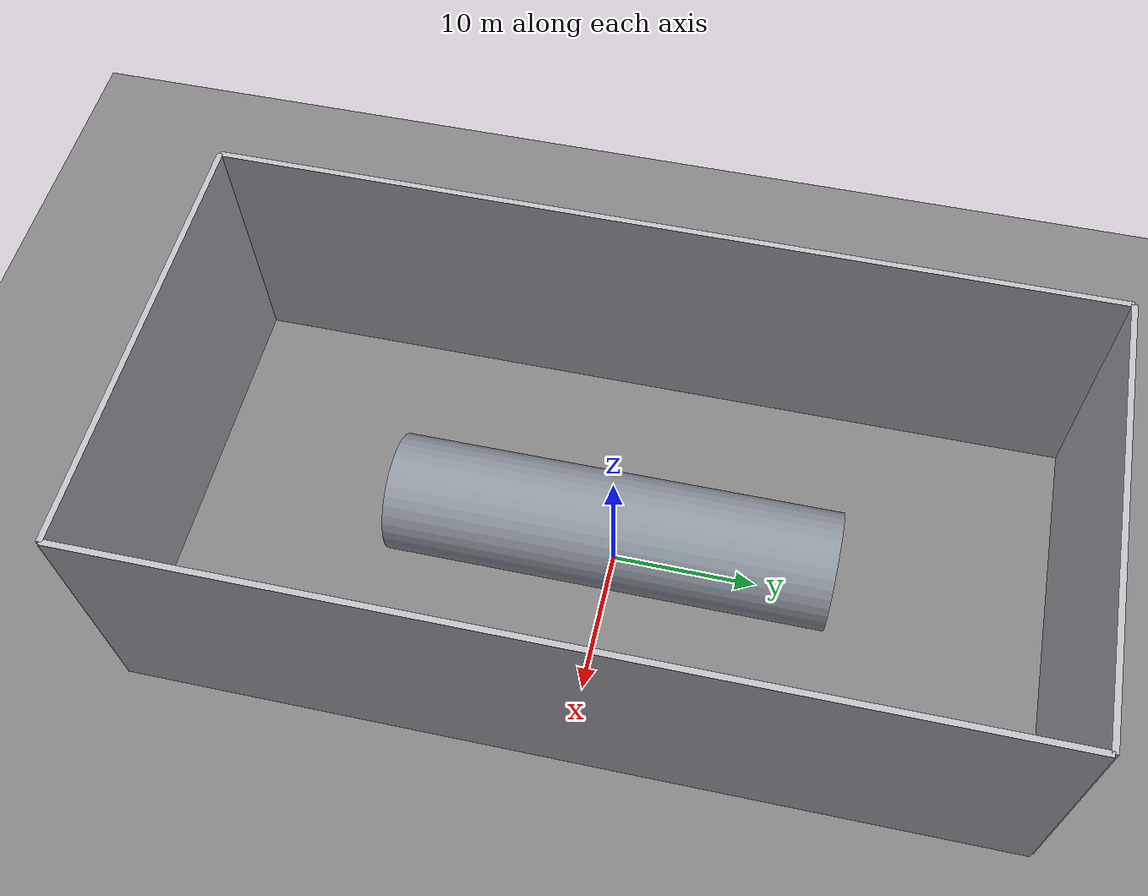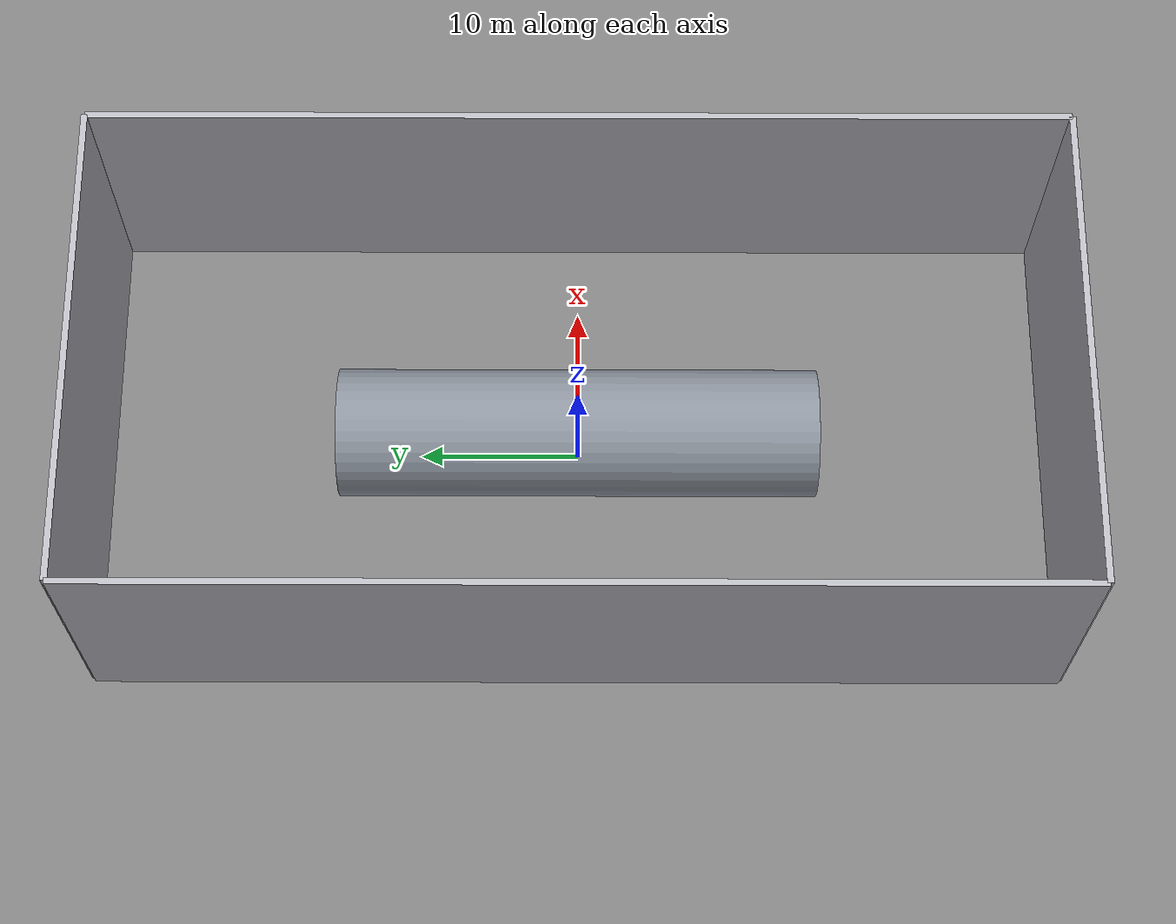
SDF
<?xml version="1.0" ?>
<sdf version="1.7">
  <world name="wind_tower_world">

    <physics type="ode">
      <max_step_size>0.003</max_step_size>
      <real_time_factor>1.0</real_time_factor>
      <real_time_update_rate>333</real_time_update_rate>
    </physics>

    <plugin name='gz::sim::systems::Physics'        filename='libgz-sim-physics-system.so'/>
    <plugin name='gz::sim::systems::UserCommands'   filename='libgz-sim-user-commands-system.so'/>
    <plugin name='gz::sim::systems::SceneBroadcaster' filename='libgz-sim-scene-broadcaster-system.so'/>
    <plugin name='gz::sim::systems::Contact'        filename='libgz-sim-contact-system.so'/>
    <plugin name="gz::sim::systems::Sensors"        filename="libgz-sim-sensors-system.so">
      <render_engine>ogre2</render_engine>
    </plugin>
    <plugin name="gz::sim::systems::Imu"    filename="libgz-sim-imu-system.so"/>
    <plugin name="gz::sim::systems::NavSat" filename="libgz-sim-navsat-system.so"/>

    <scene>
      <ambient>0.8 0.8 0.8 1</ambient>
      <background>0.3 0.3 0.35 1</background>
      <shadows>true</shadows>
    </scene>

    <light type="directional" name="sun">
      <cast_shadows>true</cast_shadows>
      <pose>0 0 20 0 0 0</pose>
      <diffuse>0.9 0.9 0.9 1</diffuse>
      <specular>0.3 0.3 0.3 1</specular>
      <direction>-0.5 0.1 -0.9</direction>
    </light>

    <!-- Suelo -->
    <model name="ground_plane">
      <static>true</static>
      <link name="link">
        <collision name="collision">
          <geometry>
            <plane><normal>0 0 1</normal><size>200 200</size></plane>
          </geometry>
          <surface><friction><ode><mu>0.8</mu><mu2>0.8</mu2></ode></friction></surface>
        </collision>
        <visual name="visual">
          <geometry>
            <plane><normal>0 0 1</normal><size>200 200</size></plane>
          </geometry>
          <material>
            <ambient>0.35 0.35 0.35 1</ambient>
            <diffuse>0.5 0.5 0.5 1</diffuse>
          </material>
        </visual>
      </link>
    </model>

    <!-- Pared norte -->
    <model name="wall_north">
      <static>true</static>
      <pose>0 30 9 0 0 0</pose>
      <link name="link">
        <collision name="col"><geometry><box><size>30 0.4 18</size></box></geometry></collision>
        <visual name="vis">
          <geometry><box><size>30 0.4 18</size></box></geometry>
          <material><ambient>0.72 0.72 0.75 1</ambient><diffuse>0.72 0.72 0.75 1</diffuse></material>
        </visual>
      </link>
    </model>

    <!-- Pared sur -->
    <model name="wall_south">
      <static>true</static>
      <pose>0 -30 9 0 0 0</pose>
      <link name="link">
        <collision name="col"><geometry><box><size>30 0.4 18</size></box></geometry></collision>
        <visual name="vis">
          <geometry><box><size>30 0.4 18</size></box></geometry>
          <material><ambient>0.72 0.72 0.75 1</ambient><diffuse>0.72 0.72 0.75 1</diffuse></material>
        </visual>
      </link>
    </model>

    <!-- Pared este -->
    <model name="wall_east">
      <static>true</static>
      <pose>15 0 9 0 0 0</pose>
      <link name="link">
        <collision name="col"><geometry><box><size>0.4 60 18</size></box></geometry></collision>
        <visual name="vis">
          <geometry><box><size>0.4 60 18</size></box></geometry>
          <material><ambient>0.72 0.72 0.75 1</ambient><diffuse>0.72 0.72 0.75 1</diffuse></material>
        </visual>
      </link>
    </model>

    <!-- Pared oeste -->
    <model name="wall_west">
      <static>true</static>
      <pose>-15 0 9 0 0 0</pose>
      <link name="link">
        <collision name="col"><geometry><box><size>0.4 60 18</size></box></geometry></collision>
        <visual name="vis">
          <geometry><box><size>0.4 60 18</size></box></geometry>
          <material><ambient>0.72 0.72 0.75 1</ambient><diffuse>0.72 0.72 0.75 1</diffuse></material>
        </visual>
      </link>
    </model>

    <model name="wind_tower_tube">
      <static>false</static>
      <pose>-4 15 0 1.5708 0 0</pose>
      <link name="tube_link">
        <!-- Inercia de cilindro hueco Ø8m×30m, masa simulada -->
        <inertial>
          <mass>2000</mass>
          <inertia>
            <ixx>155000</ixx><ixy>0</ixy><ixz>0</ixz>
            <iyy>155000</iyy><iyz>0</iyz>
            <izz>32000</izz>
          </inertia>
        </inertial>
        <visual name="visual">
          <geometry>
            <mesh>
              <uri>model://TRAMO_TORRE.STL</uri>
              <scale>0.001 0.001 0.001</scale>
            </mesh>
          </geometry>
          <material>
            <ambient>0.55 0.58 0.62 1</ambient>
            <diffuse>0.55 0.58 0.62 1</diffuse>
            <specular>0.3 0.3 0.3 1</specular>
          </material>
        </visual>
        <collision name="collision">
          <geometry>
            <mesh>
              <uri>model://TRAMO_TORRE.STL</uri>
              <scale>0.001 0.001 0.001</scale>
            </mesh>
          </geometry>
        </collision>
      </link>

      <!-- Joint revolute: fija traslación, permite rotación alrededor del eje axial del tubo -->
      <!-- pose en frame tube_link: centro sección X 0→8m = 4, Y 0→8m = 4 -->
      <joint name="turner_joint" type="revolute">
        <parent>world</parent>
        <child>tube_link</child>
        <pose>4.0 4.0 0 0 0 0</pose>
        <axis>
          <xyz expressed_in="__model__">0 0 1</xyz>
          <limit><lower>-1e16</lower><upper>1e16</upper></limit>
          <!-- Low losses keep the simulated turner responsive to velocity commands.
               Real actuator limits should be modelled separately once hardware data exists. -->
          <dynamics><damping>2.0</damping><friction>0.1</friction></dynamics>
        </axis>
      </joint>

      <!-- Controlador de velocidad del virador -->
      <plugin filename="gz-sim-joint-controller-system"
              name="gz::sim::systems::JointController">
        <joint_name>turner_joint</joint_name>
        <use_force_commands>false</use_force_commands>
        <initial_velocity>0.0</initial_velocity>
      </plugin>

      <!-- Publicador de estado del joint (ángulo) -->
      <plugin filename="gz-sim-joint-state-publisher-system"
              name="gz::sim::systems::JointStatePublisher"/>

    </model>

    <!-- SYNTHETIC DEFECTS (auto-generated) -->
    <model name="defect_0000_pitting">
      <static>true</static>
      <pose>3.849072 -5.849238 3.345928 0 0 0</pose>
      <link name="link">
        <visual name="visual">
          <geometry>
            <sphere>
              <radius>0.02075</radius>
            </sphere>
          </geometry>
          <material>
            <ambient>0.15 0.15 0.15 1</ambient>
            <diffuse>0.15 0.15 0.15 1</diffuse>
            <specular>0.1 0.1 0.1 1</specular>
          </material>
          <cast_shadows>false</cast_shadows>
        </visual>
        <collision name="collision">
          <geometry>
            <sphere><radius>0.02075</radius></sphere>
          </geometry>
          <surface>
            <contact>
              <collide_bitmask>0</collide_bitmask>
            </contact>
          </surface>
        </collision>
      </link>
    </model>
    <model name="defect_0001_pitting">
      <static>true</static>
      <pose>2.018058 10.196669 0.680613 0 0 0</pose>
      <link name="link">
        <visual name="visual">
          <geometry>
            <sphere>
              <radius>0.04030</radius>
            </sphere>
          </geometry>
          <material>
            <ambient>0.15 0.15 0.15 1</ambient>
            <diffuse>0.15 0.15 0.15 1</diffuse>
            <specular>0.1 0.1 0.1 1</specular>
          </material>
          <cast_shadows>false</cast_shadows>
        </visual>
        <collision name="collision">
          <geometry>
            <sphere><radius>0.04030</radius></sphere>
          </geometry>
          <surface>
            <contact>
              <collide_bitmask>0</collide_bitmask>
            </contact>
          </surface>
        </collision>
      </link>
    </model>
    <model name="defect_0002_rust">
      <static>true</static>
      <pose>-0.130619 -7.315413 7.880418 0 0 0</pose>
      <link name="link">
        <visual name="visual">
          <geometry>
            <sphere>
              <radius>0.04238</radius>
            </sphere>
          </geometry>
          <material>
            <ambient>0.55 0.18 0.05 1</ambient>
            <diffuse>0.55 0.18 0.05 1</diffuse>
            <specular>0.1 0.1 0.1 1</specular>
          </material>
          <cast_shadows>false</cast_shadows>
        </visual>
        <collision name="collision">
          <geometry>
            <sphere><radius>0.04238</radius></sphere>
          </geometry>
          <surface>
            <contact>
              <collide_bitmask>0</collide_bitmask>
            </contact>
          </surface>
        </collision>
      </link>
    </model>
    <model name="defect_0003_rust">
      <static>true</static>
      <pose>-1.078076 3.896995 7.715862 0 0 0</pose>
      <link name="link">
        <visual name="visual">
          <geometry>
            <sphere>
              <radius>0.05591</radius>
            </sphere>
          </geometry>
          <material>
            <ambient>0.55 0.18 0.05 1</ambient>
            <diffuse>0.55 0.18 0.05 1</diffuse>
            <specular>0.1 0.1 0.1 1</specular>
          </material>
          <cast_shadows>false</cast_shadows>
        </visual>
        <collision name="collision">
          <geometry>
            <sphere><radius>0.05591</radius></sphere>
          </geometry>
          <surface>
            <contact>
              <collide_bitmask>0</collide_bitmask>
            </contact>
          </surface>
        </collision>
      </link>
    </model>
    <model name="defect_0004_rust">
      <static>true</static>
      <pose>0.156667 8.045192 0.165340 0 0 0</pose>
      <link name="link">
        <visual name="visual">
          <geometry>
            <sphere>
              <radius>0.08714</radius>
            </sphere>
          </geometry>
          <material>
            <ambient>0.55 0.18 0.05 1</ambient>
            <diffuse>0.55 0.18 0.05 1</diffuse>
            <specular>0.1 0.1 0.1 1</specular>
          </material>
          <cast_shadows>false</cast_shadows>
        </visual>
        <collision name="collision">
          <geometry>
            <sphere><radius>0.08714</radius></sphere>
          </geometry>
          <surface>
            <contact>
              <collide_bitmask>0</collide_bitmask>
            </contact>
          </surface>
        </collision>
      </link>
    </model>
    <model name="defect_0005_through_hole">
      <static>true</static>
      <pose>3.190843 -4.153487 1.845530 0 0 0</pose>
      <link name="link">
        <visual name="visual">
          <geometry>
            <sphere>
              <radius>0.07491</radius>
            </sphere>
          </geometry>
          <material>
            <ambient>0.00 0.00 0.00 1</ambient>
            <diffuse>0.00 0.00 0.00 1</diffuse>
            <specular>0.1 0.1 0.1 1</specular>
          </material>
          <cast_shadows>false</cast_shadows>
        </visual>
        <collision name="collision">
          <geometry>
            <sphere><radius>0.07491</radius></sphere>
          </geometry>
          <surface>
            <contact>
              <collide_bitmask>0</collide_bitmask>
            </contact>
          </surface>
        </collision>
      </link>
    </model>
    <model name="defect_0006_through_hole">
      <static>true</static>
      <pose>2.208609 -10.588608 0.824345 0 0 0</pose>
      <link name="link">
        <visual name="visual">
          <geometry>
            <sphere>
              <radius>0.05683</radius>
            </sphere>
          </geometry>
          <material>
            <ambient>0.00 0.00 0.00 1</ambient>
            <diffuse>0.00 0.00 0.00 1</diffuse>
            <specular>0.1 0.1 0.1 1</specular>
          </material>
          <cast_shadows>false</cast_shadows>
        </visual>
        <collision name="collision">
          <geometry>
            <sphere><radius>0.05683</radius></sphere>
          </geometry>
          <surface>
            <contact>
              <collide_bitmask>0</collide_bitmask>
            </contact>
          </surface>
        </collision>
      </link>
    </model>
    <model name="defect_0007_through_hole">
      <static>true</static>
      <pose>-3.823598 7.985335 4.489581 0 0 0</pose>
      <link name="link">
        <visual name="visual">
          <geometry>
            <sphere>
              <radius>0.07019</radius>
            </sphere>
          </geometry>
          <material>
            <ambient>0.00 0.00 0.00 1</ambient>
            <diffuse>0.00 0.00 0.00 1</diffuse>
            <specular>0.1 0.1 0.1 1</specular>
          </material>
          <cast_shadows>false</cast_shadows>
        </visual>
        <collision name="collision">
          <geometry>
            <sphere><radius>0.07019</radius></sphere>
          </geometry>
          <surface>
            <contact>
              <collide_bitmask>0</collide_bitmask>
            </contact>
          </surface>
        </collision>
      </link>
    </model>
    <model name="defect_0008_pitting">
      <static>true</static>
      <pose>-1.244852 -3.158106 7.670452 0 0 0</pose>
      <link name="link">
        <visual name="visual">
          <geometry>
            <sphere>
              <radius>0.04919</radius>
            </sphere>
          </geometry>
          <material>
            <ambient>0.15 0.15 0.15 1</ambient>
            <diffuse>0.15 0.15 0.15 1</diffuse>
            <specular>0.1 0.1 0.1 1</specular>
          </material>
          <cast_shadows>false</cast_shadows>
        </visual>
        <collision name="collision">
          <geometry>
            <sphere><radius>0.04919</radius></sphere>
          </geometry>
          <surface>
            <contact>
              <collide_bitmask>0</collide_bitmask>
            </contact>
          </surface>
        </collision>
      </link>
    </model>
    <model name="defect_0009_through_hole">
      <static>true</static>
      <pose>-1.800271 9.404379 7.407772 0 0 0</pose>
      <link name="link">
        <visual name="visual">
          <geometry>
            <sphere>
              <radius>0.07093</radius>
            </sphere>
          </geometry>
          <material>
            <ambient>0.00 0.00 0.00 1</ambient>
            <diffuse>0.00 0.00 0.00 1</diffuse>
            <specular>0.1 0.1 0.1 1</specular>
          </material>
          <cast_shadows>false</cast_shadows>
        </visual>
        <collision name="collision">
          <geometry>
            <sphere><radius>0.07093</radius></sphere>
          </geometry>
          <surface>
            <contact>
              <collide_bitmask>0</collide_bitmask>
            </contact>
          </surface>
        </collision>
      </link>
    </model>
    <model name="defect_0010_pitting">
      <static>true</static>
      <pose>3.784691 -7.074645 4.956245 0 0 0</pose>
      <link name="link">
        <visual name="visual">
          <geometry>
            <sphere>
              <radius>0.02137</radius>
            </sphere>
          </geometry>
          <material>
            <ambient>0.15 0.15 0.15 1</ambient>
            <diffuse>0.15 0.15 0.15 1</diffuse>
            <specular>0.1 0.1 0.1 1</specular>
          </material>
          <cast_shadows>false</cast_shadows>
        </visual>
        <collision name="collision">
          <geometry>
            <sphere><radius>0.02137</radius></sphere>
          </geometry>
          <surface>
            <contact>
              <collide_bitmask>0</collide_bitmask>
            </contact>
          </surface>
        </collision>
      </link>
    </model>
    <model name="defect_0011_rust">
      <static>true</static>
      <pose>3.806809 -10.373963 4.676074 0 0 0</pose>
      <link name="link">
        <visual name="visual">
          <geometry>
            <sphere>
              <radius>0.05862</radius>
            </sphere>
          </geometry>
          <material>
            <ambient>0.55 0.18 0.05 1</ambient>
            <diffuse>0.55 0.18 0.05 1</diffuse>
            <specular>0.1 0.1 0.1 1</specular>
          </material>
          <cast_shadows>false</cast_shadows>
        </visual>
        <collision name="collision">
          <geometry>
            <sphere><radius>0.05862</radius></sphere>
          </geometry>
          <surface>
            <contact>
              <collide_bitmask>0</collide_bitmask>
            </contact>
          </surface>
        </collision>
      </link>
    </model>
    <model name="defect_0012_pitting">
      <static>true</static>
      <pose>3.768698 -3.375295 3.019910 0 0 0</pose>
      <link name="link">
        <visual name="visual">
          <geometry>
            <sphere>
              <radius>0.03094</radius>
            </sphere>
          </geometry>
          <material>
            <ambient>0.15 0.15 0.15 1</ambient>
            <diffuse>0.15 0.15 0.15 1</diffuse>
            <specular>0.1 0.1 0.1 1</specular>
          </material>
          <cast_shadows>false</cast_shadows>
        </visual>
        <collision name="collision">
          <geometry>
            <sphere><radius>0.03094</radius></sphere>
          </geometry>
          <surface>
            <contact>
              <collide_bitmask>0</collide_bitmask>
            </contact>
          </surface>
        </collision>
      </link>
    </model>
    <model name="defect_0013_rust">
      <static>true</static>
      <pose>-2.412563 3.848920 6.948924 0 0 0</pose>
      <link name="link">
        <visual name="visual">
          <geometry>
            <sphere>
              <radius>0.11493</radius>
            </sphere>
          </geometry>
          <material>
            <ambient>0.55 0.18 0.05 1</ambient>
            <diffuse>0.55 0.18 0.05 1</diffuse>
            <specular>0.1 0.1 0.1 1</specular>
          </material>
          <cast_shadows>false</cast_shadows>
        </visual>
        <collision name="collision">
          <geometry>
            <sphere><radius>0.11493</radius></sphere>
          </geometry>
          <surface>
            <contact>
              <collide_bitmask>0</collide_bitmask>
            </contact>
          </surface>
        </collision>
      </link>
    </model>
    <model name="defect_0014_rust">
      <static>true</static>
      <pose>2.629065 -8.751535 6.780543 0 0 0</pose>
      <link name="link">
        <visual name="visual">
          <geometry>
            <sphere>
              <radius>0.09833</radius>
            </sphere>
          </geometry>
          <material>
            <ambient>0.55 0.18 0.05 1</ambient>
            <diffuse>0.55 0.18 0.05 1</diffuse>
            <specular>0.1 0.1 0.1 1</specular>
          </material>
          <cast_shadows>false</cast_shadows>
        </visual>
        <collision name="collision">
          <geometry>
            <sphere><radius>0.09833</radius></sphere>
          </geometry>
          <surface>
            <contact>
              <collide_bitmask>0</collide_bitmask>
            </contact>
          </surface>
        </collision>
      </link>
    </model>
    <model name="defect_0015_through_hole">
      <static>true</static>
      <pose>-3.532389 1.480693 5.538777 0 0 0</pose>
      <link name="link">
        <visual name="visual">
          <geometry>
            <sphere>
              <radius>0.07200</radius>
            </sphere>
          </geometry>
          <material>
            <ambient>0.00 0.00 0.00 1</ambient>
            <diffuse>0.00 0.00 0.00 1</diffuse>
            <specular>0.1 0.1 0.1 1</specular>
          </material>
          <cast_shadows>false</cast_shadows>
        </visual>
        <collision name="collision">
          <geometry>
            <sphere><radius>0.07200</radius></sphere>
          </geometry>
          <surface>
            <contact>
              <collide_bitmask>0</collide_bitmask>
            </contact>
          </surface>
        </collision>
      </link>
    </model>
    <model name="defect_0016_through_hole">
      <static>true</static>
      <pose>0.770498 -7.044750 0.231766 0 0 0</pose>
      <link name="link">
        <visual name="visual">
          <geometry>
            <sphere>
              <radius>0.07880</radius>
            </sphere>
          </geometry>
          <material>
            <ambient>0.00 0.00 0.00 1</ambient>
            <diffuse>0.00 0.00 0.00 1</diffuse>
            <specular>0.1 0.1 0.1 1</specular>
          </material>
          <cast_shadows>false</cast_shadows>
        </visual>
        <collision name="collision">
          <geometry>
            <sphere><radius>0.07880</radius></sphere>
          </geometry>
          <surface>
            <contact>
              <collide_bitmask>0</collide_bitmask>
            </contact>
          </surface>
        </collision>
      </link>
    </model>
    <model name="defect_0017_rust">
      <static>true</static>
      <pose>-1.356370 -7.514446 0.382333 0 0 0</pose>
      <link name="link">
        <visual name="visual">
          <geometry>
            <sphere>
              <radius>0.06142</radius>
            </sphere>
          </geometry>
          <material>
            <ambient>0.55 0.18 0.05 1</ambient>
            <diffuse>0.55 0.18 0.05 1</diffuse>
            <specular>0.1 0.1 0.1 1</specular>
          </material>
          <cast_shadows>false</cast_shadows>
        </visual>
        <collision name="collision">
          <geometry>
            <sphere><radius>0.06142</radius></sphere>
          </geometry>
          <surface>
            <contact>
              <collide_bitmask>0</collide_bitmask>
            </contact>
          </surface>
        </collision>
      </link>
    </model>
    <model name="defect_0018_through_hole">
      <static>true</static>
      <pose>2.359343 4.041405 7.066712 0 0 0</pose>
      <link name="link">
        <visual name="visual">
          <geometry>
            <sphere>
              <radius>0.05573</radius>
            </sphere>
          </geometry>
          <material>
            <ambient>0.00 0.00 0.00 1</ambient>
            <diffuse>0.00 0.00 0.00 1</diffuse>
            <specular>0.1 0.1 0.1 1</specular>
          </material>
          <cast_shadows>false</cast_shadows>
        </visual>
        <collision name="collision">
          <geometry>
            <sphere><radius>0.05573</radius></sphere>
          </geometry>
          <surface>
            <contact>
              <collide_bitmask>0</collide_bitmask>
            </contact>
          </surface>
        </collision>
      </link>
    </model>
    <model name="defect_0019_through_hole">
      <static>true</static>
      <pose>3.861190 -6.113116 3.918169 0 0 0</pose>
      <link name="link">
        <visual name="visual">
          <geometry>
            <sphere>
              <radius>0.06294</radius>
            </sphere>
          </geometry>
          <material>
            <ambient>0.00 0.00 0.00 1</ambient>
            <diffuse>0.00 0.00 0.00 1</diffuse>
            <specular>0.1 0.1 0.1 1</specular>
          </material>
          <cast_shadows>false</cast_shadows>
        </visual>
        <collision name="collision">
          <geometry>
            <sphere><radius>0.06294</radius></sphere>
          </geometry>
          <surface>
            <contact>
              <collide_bitmask>0</collide_bitmask>
            </contact>
          </surface>
        </collision>
      </link>
    </model>
    <model name="defect_0020_pitting">
      <static>true</static>
      <pose>-2.333581 2.199236 0.878794 0 0 0</pose>
      <link name="link">
        <visual name="visual">
          <geometry>
            <sphere>
              <radius>0.02788</radius>
            </sphere>
          </geometry>
          <material>
            <ambient>0.15 0.15 0.15 1</ambient>
            <diffuse>0.15 0.15 0.15 1</diffuse>
            <specular>0.1 0.1 0.1 1</specular>
          </material>
          <cast_shadows>false</cast_shadows>
        </visual>
        <collision name="collision">
          <geometry>
            <sphere><radius>0.02788</radius></sphere>
          </geometry>
          <surface>
            <contact>
              <collide_bitmask>0</collide_bitmask>
            </contact>
          </surface>
        </collision>
      </link>
    </model>
    <model name="defect_0021_rust">
      <static>true</static>
      <pose>-0.231350 12.935978 7.860528 0 0 0</pose>
      <link name="link">
        <visual name="visual">
          <geometry>
            <sphere>
              <radius>0.05755</radius>
            </sphere>
          </geometry>
          <material>
            <ambient>0.55 0.18 0.05 1</ambient>
            <diffuse>0.55 0.18 0.05 1</diffuse>
            <specular>0.1 0.1 0.1 1</specular>
          </material>
          <cast_shadows>false</cast_shadows>
        </visual>
        <collision name="collision">
          <geometry>
            <sphere><radius>0.05755</radius></sphere>
          </geometry>
          <surface>
            <contact>
              <collide_bitmask>0</collide_bitmask>
            </contact>
          </surface>
        </collision>
      </link>
    </model>
    <model name="defect_0022_rust">
      <static>true</static>
      <pose>-2.786298 -10.149123 6.701943 0 0 0</pose>
      <link name="link">
        <visual name="visual">
          <geometry>
            <sphere>
              <radius>0.04377</radius>
            </sphere>
          </geometry>
          <material>
            <ambient>0.55 0.18 0.05 1</ambient>
            <diffuse>0.55 0.18 0.05 1</diffuse>
            <specular>0.1 0.1 0.1 1</specular>
          </material>
          <cast_shadows>false</cast_shadows>
        </visual>
        <collision name="collision">
          <geometry>
            <sphere><radius>0.04377</radius></sphere>
          </geometry>
          <surface>
            <contact>
              <collide_bitmask>0</collide_bitmask>
            </contact>
          </surface>
        </collision>
      </link>
    </model>
    <model name="defect_0023_pitting">
      <static>true</static>
      <pose>2.635481 -11.348280 6.864352 0 0 0</pose>
      <link name="link">
        <visual name="visual">
          <geometry>
            <sphere>
              <radius>0.03266</radius>
            </sphere>
          </geometry>
          <material>
            <ambient>0.15 0.15 0.15 1</ambient>
            <diffuse>0.15 0.15 0.15 1</diffuse>
            <specular>0.1 0.1 0.1 1</specular>
          </material>
          <cast_shadows>false</cast_shadows>
        </visual>
        <collision name="collision">
          <geometry>
            <sphere><radius>0.03266</radius></sphere>
          </geometry>
          <surface>
            <contact>
              <collide_bitmask>0</collide_bitmask>
            </contact>
          </surface>
        </collision>
      </link>
    </model>
    <model name="defect_0024_through_hole">
      <static>true</static>
      <pose>-2.960975 12.248038 1.525936 0 0 0</pose>
      <link name="link">
        <visual name="visual">
          <geometry>
            <sphere>
              <radius>0.06646</radius>
            </sphere>
          </geometry>
          <material>
            <ambient>0.00 0.00 0.00 1</ambient>
            <diffuse>0.00 0.00 0.00 1</diffuse>
            <specular>0.1 0.1 0.1 1</specular>
          </material>
          <cast_shadows>false</cast_shadows>
        </visual>
        <collision name="collision">
          <geometry>
            <sphere><radius>0.06646</radius></sphere>
          </geometry>
          <surface>
            <contact>
              <collide_bitmask>0</collide_bitmask>
            </contact>
          </surface>
        </collision>
      </link>
    </model>
    <model name="defect_0025_rust">
      <static>true</static>
      <pose>-0.881085 4.724470 7.724545 0 0 0</pose>
      <link name="link">
        <visual name="visual">
          <geometry>
            <sphere>
              <radius>0.09766</radius>
            </sphere>
          </geometry>
          <material>
            <ambient>0.55 0.18 0.05 1</ambient>
            <diffuse>0.55 0.18 0.05 1</diffuse>
            <specular>0.1 0.1 0.1 1</specular>
          </material>
          <cast_shadows>false</cast_shadows>
        </visual>
        <collision name="collision">
          <geometry>
            <sphere><radius>0.09766</radius></sphere>
          </geometry>
          <surface>
            <contact>
              <collide_bitmask>0</collide_bitmask>
            </contact>
          </surface>
        </collision>
      </link>
    </model>
    <model name="defect_0026_rust">
      <static>true</static>
      <pose>1.527743 -10.099643 7.516168 0 0 0</pose>
      <link name="link">
        <visual name="visual">
          <geometry>
            <sphere>
              <radius>0.09128</radius>
            </sphere>
          </geometry>
          <material>
            <ambient>0.55 0.18 0.05 1</ambient>
            <diffuse>0.55 0.18 0.05 1</diffuse>
            <specular>0.1 0.1 0.1 1</specular>
          </material>
          <cast_shadows>false</cast_shadows>
        </visual>
        <collision name="collision">
          <geometry>
            <sphere><radius>0.09128</radius></sphere>
          </geometry>
          <surface>
            <contact>
              <collide_bitmask>0</collide_bitmask>
            </contact>
          </surface>
        </collision>
      </link>
    </model>
    <model name="defect_0027_rust">
      <static>true</static>
      <pose>3.795225 9.772176 4.320032 0 0 0</pose>
      <link name="link">
        <visual name="visual">
          <geometry>
            <sphere>
              <radius>0.11631</radius>
            </sphere>
          </geometry>
          <material>
            <ambient>0.55 0.18 0.05 1</ambient>
            <diffuse>0.55 0.18 0.05 1</diffuse>
            <specular>0.1 0.1 0.1 1</specular>
          </material>
          <cast_shadows>false</cast_shadows>
        </visual>
        <collision name="collision">
          <geometry>
            <sphere><radius>0.11631</radius></sphere>
          </geometry>
          <surface>
            <contact>
              <collide_bitmask>0</collide_bitmask>
            </contact>
          </surface>
        </collision>
      </link>
    </model>
    <model name="defect_0028_pitting">
      <static>true</static>
      <pose>-2.834003 10.728324 1.321264 0 0 0</pose>
      <link name="link">
        <visual name="visual">
          <geometry>
            <sphere>
              <radius>0.02536</radius>
            </sphere>
          </geometry>
          <material>
            <ambient>0.15 0.15 0.15 1</ambient>
            <diffuse>0.15 0.15 0.15 1</diffuse>
            <specular>0.1 0.1 0.1 1</specular>
          </material>
          <cast_shadows>false</cast_shadows>
        </visual>
        <collision name="collision">
          <geometry>
            <sphere><radius>0.02536</radius></sphere>
          </geometry>
          <surface>
            <contact>
              <collide_bitmask>0</collide_bitmask>
            </contact>
          </surface>
        </collision>
      </link>
    </model>
    <model name="defect_0029_rust">
      <static>true</static>
      <pose>3.141383 2.833225 1.802188 0 0 0</pose>
      <link name="link">
        <visual name="visual">
          <geometry>
            <sphere>
              <radius>0.09112</radius>
            </sphere>
          </geometry>
          <material>
            <ambient>0.55 0.18 0.05 1</ambient>
            <diffuse>0.55 0.18 0.05 1</diffuse>
            <specular>0.1 0.1 0.1 1</specular>
          </material>
          <cast_shadows>false</cast_shadows>
        </visual>
        <collision name="collision">
          <geometry>
            <sphere><radius>0.09112</radius></sphere>
          </geometry>
          <surface>
            <contact>
              <collide_bitmask>0</collide_bitmask>
            </contact>
          </surface>
        </collision>
      </link>
    </model>
    <model name="defect_0030_pitting">
      <static>true</static>
      <pose>-0.737179 7.244288 7.818308 0 0 0</pose>
      <link name="link">
        <visual name="visual">
          <geometry>
            <sphere>
              <radius>0.03618</radius>
            </sphere>
          </geometry>
          <material>
            <ambient>0.15 0.15 0.15 1</ambient>
            <diffuse>0.15 0.15 0.15 1</diffuse>
            <specular>0.1 0.1 0.1 1</specular>
          </material>
          <cast_shadows>false</cast_shadows>
        </visual>
        <collision name="collision">
          <geometry>
            <sphere><radius>0.03618</radius></sphere>
          </geometry>
          <surface>
            <contact>
              <collide_bitmask>0</collide_bitmask>
            </contact>
          </surface>
        </collision>
      </link>
    </model>
    <model name="defect_0031_rust">
      <static>true</static>
      <pose>-1.662861 -12.493605 0.517573 0 0 0</pose>
      <link name="link">
        <visual name="visual">
          <geometry>
            <sphere>
              <radius>0.06593</radius>
            </sphere>
          </geometry>
          <material>
            <ambient>0.55 0.18 0.05 1</ambient>
            <diffuse>0.55 0.18 0.05 1</diffuse>
            <specular>0.1 0.1 0.1 1</specular>
          </material>
          <cast_shadows>false</cast_shadows>
        </visual>
        <collision name="collision">
          <geometry>
            <sphere><radius>0.06593</radius></sphere>
          </geometry>
          <surface>
            <contact>
              <collide_bitmask>0</collide_bitmask>
            </contact>
          </surface>
        </collision>
      </link>
    </model>
    <model name="defect_0032_through_hole">
      <static>true</static>
      <pose>1.368151 -5.004633 0.408341 0 0 0</pose>
      <link name="link">
        <visual name="visual">
          <geometry>
            <sphere>
              <radius>0.08158</radius>
            </sphere>
          </geometry>
          <material>
            <ambient>0.00 0.00 0.00 1</ambient>
            <diffuse>0.00 0.00 0.00 1</diffuse>
            <specular>0.1 0.1 0.1 1</specular>
          </material>
          <cast_shadows>false</cast_shadows>
        </visual>
        <collision name="collision">
          <geometry>
            <sphere><radius>0.08158</radius></sphere>
          </geometry>
          <surface>
            <contact>
              <collide_bitmask>0</collide_bitmask>
            </contact>
          </surface>
        </collision>
      </link>
    </model>
    <model name="defect_0033_through_hole">
      <static>true</static>
      <pose>0.337371 -10.773010 7.822794 0 0 0</pose>
      <link name="link">
        <visual name="visual">
          <geometry>
            <sphere>
              <radius>0.08735</radius>
            </sphere>
          </geometry>
          <material>
            <ambient>0.00 0.00 0.00 1</ambient>
            <diffuse>0.00 0.00 0.00 1</diffuse>
            <specular>0.1 0.1 0.1 1</specular>
          </material>
          <cast_shadows>false</cast_shadows>
        </visual>
        <collision name="collision">
          <geometry>
            <sphere><radius>0.08735</radius></sphere>
          </geometry>
          <surface>
            <contact>
              <collide_bitmask>0</collide_bitmask>
            </contact>
          </surface>
        </collision>
      </link>
    </model>
    <model name="defect_0034_rust">
      <static>true</static>
      <pose>2.761087 6.911695 1.354148 0 0 0</pose>
      <link name="link">
        <visual name="visual">
          <geometry>
            <sphere>
              <radius>0.10085</radius>
            </sphere>
          </geometry>
          <material>
            <ambient>0.55 0.18 0.05 1</ambient>
            <diffuse>0.55 0.18 0.05 1</diffuse>
            <specular>0.1 0.1 0.1 1</specular>
          </material>
          <cast_shadows>false</cast_shadows>
        </visual>
        <collision name="collision">
          <geometry>
            <sphere><radius>0.10085</radius></sphere>
          </geometry>
          <surface>
            <contact>
              <collide_bitmask>0</collide_bitmask>
            </contact>
          </surface>
        </collision>
      </link>
    </model>
    <model name="defect_0035_rust">
      <static>true</static>
      <pose>-2.759459 -6.108528 1.328149 0 0 0</pose>
      <link name="link">
        <visual name="visual">
          <geometry>
            <sphere>
              <radius>0.08398</radius>
            </sphere>
          </geometry>
          <material>
            <ambient>0.55 0.18 0.05 1</ambient>
            <diffuse>0.55 0.18 0.05 1</diffuse>
            <specular>0.1 0.1 0.1 1</specular>
          </material>
          <cast_shadows>false</cast_shadows>
        </visual>
        <collision name="collision">
          <geometry>
            <sphere><radius>0.08398</radius></sphere>
          </geometry>
          <surface>
            <contact>
              <collide_bitmask>0</collide_bitmask>
            </contact>
          </surface>
        </collision>
      </link>
    </model>
    <model name="defect_0036_rust">
      <static>true</static>
      <pose>-3.837345 1.021698 4.486458 0 0 0</pose>
      <link name="link">
        <visual name="visual">
          <geometry>
            <sphere>
              <radius>0.05694</radius>
            </sphere>
          </geometry>
          <material>
            <ambient>0.55 0.18 0.05 1</ambient>
            <diffuse>0.55 0.18 0.05 1</diffuse>
            <specular>0.1 0.1 0.1 1</specular>
          </material>
          <cast_shadows>false</cast_shadows>
        </visual>
        <collision name="collision">
          <geometry>
            <sphere><radius>0.05694</radius></sphere>
          </geometry>
          <surface>
            <contact>
              <collide_bitmask>0</collide_bitmask>
            </contact>
          </surface>
        </collision>
      </link>
    </model>
    <model name="defect_0037_rust">
      <static>true</static>
      <pose>-3.121117 12.873883 6.271280 0 0 0</pose>
      <link name="link">
        <visual name="visual">
          <geometry>
            <sphere>
              <radius>0.06494</radius>
            </sphere>
          </geometry>
          <material>
            <ambient>0.55 0.18 0.05 1</ambient>
            <diffuse>0.55 0.18 0.05 1</diffuse>
            <specular>0.1 0.1 0.1 1</specular>
          </material>
          <cast_shadows>false</cast_shadows>
        </visual>
        <collision name="collision">
          <geometry>
            <sphere><radius>0.06494</radius></sphere>
          </geometry>
          <surface>
            <contact>
              <collide_bitmask>0</collide_bitmask>
            </contact>
          </surface>
        </collision>
      </link>
    </model>
    <model name="defect_0038_rust">
      <static>true</static>
      <pose>3.795123 -9.853891 3.391511 0 0 0</pose>
      <link name="link">
        <visual name="visual">
          <geometry>
            <sphere>
              <radius>0.08141</radius>
            </sphere>
          </geometry>
          <material>
            <ambient>0.55 0.18 0.05 1</ambient>
            <diffuse>0.55 0.18 0.05 1</diffuse>
            <specular>0.1 0.1 0.1 1</specular>
          </material>
          <cast_shadows>false</cast_shadows>
        </visual>
        <collision name="collision">
          <geometry>
            <sphere><radius>0.08141</radius></sphere>
          </geometry>
          <surface>
            <contact>
              <collide_bitmask>0</collide_bitmask>
            </contact>
          </surface>
        </collision>
      </link>
    </model>
    <model name="defect_0039_rust">
      <static>true</static>
      <pose>3.770934 -7.017017 3.285993 0 0 0</pose>
      <link name="link">
        <visual name="visual">
          <geometry>
            <sphere>
              <radius>0.08706</radius>
            </sphere>
          </geometry>
          <material>
            <ambient>0.55 0.18 0.05 1</ambient>
            <diffuse>0.55 0.18 0.05 1</diffuse>
            <specular>0.1 0.1 0.1 1</specular>
          </material>
          <cast_shadows>false</cast_shadows>
        </visual>
        <collision name="collision">
          <geometry>
            <sphere><radius>0.08706</radius></sphere>
          </geometry>
          <surface>
            <contact>
              <collide_bitmask>0</collide_bitmask>
            </contact>
          </surface>
        </collision>
      </link>
    </model>
    <model name="defect_0040_rust">
      <static>true</static>
      <pose>-2.146938 -7.047514 0.822873 0 0 0</pose>
      <link name="link">
        <visual name="visual">
          <geometry>
            <sphere>
              <radius>0.09049</radius>
            </sphere>
          </geometry>
          <material>
            <ambient>0.55 0.18 0.05 1</ambient>
            <diffuse>0.55 0.18 0.05 1</diffuse>
            <specular>0.1 0.1 0.1 1</specular>
          </material>
          <cast_shadows>false</cast_shadows>
        </visual>
        <collision name="collision">
          <geometry>
            <sphere><radius>0.09049</radius></sphere>
          </geometry>
          <surface>
            <contact>
              <collide_bitmask>0</collide_bitmask>
            </contact>
          </surface>
        </collision>
      </link>
    </model>
    <model name="defect_0041_through_hole">
      <static>true</static>
      <pose>-3.389267 -6.811880 5.891714 0 0 0</pose>
      <link name="link">
        <visual name="visual">
          <geometry>
            <sphere>
              <radius>0.04354</radius>
            </sphere>
          </geometry>
          <material>
            <ambient>0.00 0.00 0.00 1</ambient>
            <diffuse>0.00 0.00 0.00 1</diffuse>
            <specular>0.1 0.1 0.1 1</specular>
          </material>
          <cast_shadows>false</cast_shadows>
        </visual>
        <collision name="collision">
          <geometry>
            <sphere><radius>0.04354</radius></sphere>
          </geometry>
          <surface>
            <contact>
              <collide_bitmask>0</collide_bitmask>
            </contact>
          </surface>
        </collision>
      </link>
    </model>
    <model name="defect_0042_rust">
      <static>true</static>
      <pose>-1.672586 11.323370 7.494789 0 0 0</pose>
      <link name="link">
        <visual name="visual">
          <geometry>
            <sphere>
              <radius>0.05058</radius>
            </sphere>
          </geometry>
          <material>
            <ambient>0.55 0.18 0.05 1</ambient>
            <diffuse>0.55 0.18 0.05 1</diffuse>
            <specular>0.1 0.1 0.1 1</specular>
          </material>
          <cast_shadows>false</cast_shadows>
        </visual>
        <collision name="collision">
          <geometry>
            <sphere><radius>0.05058</radius></sphere>
          </geometry>
          <surface>
            <contact>
              <collide_bitmask>0</collide_bitmask>
            </contact>
          </surface>
        </collision>
      </link>
    </model>
    <model name="defect_0043_rust">
      <static>true</static>
      <pose>3.557432 7.994922 2.602101 0 0 0</pose>
      <link name="link">
        <visual name="visual">
          <geometry>
            <sphere>
              <radius>0.10277</radius>
            </sphere>
          </geometry>
          <material>
            <ambient>0.55 0.18 0.05 1</ambient>
            <diffuse>0.55 0.18 0.05 1</diffuse>
            <specular>0.1 0.1 0.1 1</specular>
          </material>
          <cast_shadows>false</cast_shadows>
        </visual>
        <collision name="collision">
          <geometry>
            <sphere><radius>0.10277</radius></sphere>
          </geometry>
          <surface>
            <contact>
              <collide_bitmask>0</collide_bitmask>
            </contact>
          </surface>
        </collision>
      </link>
    </model>
    <model name="defect_0044_rust">
      <static>true</static>
      <pose>0.792093 -1.986956 7.768164 0 0 0</pose>
      <link name="link">
        <visual name="visual">
          <geometry>
            <sphere>
              <radius>0.07448</radius>
            </sphere>
          </geometry>
          <material>
            <ambient>0.55 0.18 0.05 1</ambient>
            <diffuse>0.55 0.18 0.05 1</diffuse>
            <specular>0.1 0.1 0.1 1</specular>
          </material>
          <cast_shadows>false</cast_shadows>
        </visual>
        <collision name="collision">
          <geometry>
            <sphere><radius>0.07448</radius></sphere>
          </geometry>
          <surface>
            <contact>
              <collide_bitmask>0</collide_bitmask>
            </contact>
          </surface>
        </collision>
      </link>
    </model>
    <model name="defect_0045_pitting">
      <static>true</static>
      <pose>2.252073 12.588295 0.834588 0 0 0</pose>
      <link name="link">
        <visual name="visual">
          <geometry>
            <sphere>
              <radius>0.04020</radius>
            </sphere>
          </geometry>
          <material>
            <ambient>0.15 0.15 0.15 1</ambient>
            <diffuse>0.15 0.15 0.15 1</diffuse>
            <specular>0.1 0.1 0.1 1</specular>
          </material>
          <cast_shadows>false</cast_shadows>
        </visual>
        <collision name="collision">
          <geometry>
            <sphere><radius>0.04020</radius></sphere>
          </geometry>
          <surface>
            <contact>
              <collide_bitmask>0</collide_bitmask>
            </contact>
          </surface>
        </collision>
      </link>
    </model>
    <model name="defect_0046_rust">
      <static>true</static>
      <pose>3.857718 9.403486 3.967430 0 0 0</pose>
      <link name="link">
        <visual name="visual">
          <geometry>
            <sphere>
              <radius>0.06714</radius>
            </sphere>
          </geometry>
          <material>
            <ambient>0.55 0.18 0.05 1</ambient>
            <diffuse>0.55 0.18 0.05 1</diffuse>
            <specular>0.1 0.1 0.1 1</specular>
          </material>
          <cast_shadows>false</cast_shadows>
        </visual>
        <collision name="collision">
          <geometry>
            <sphere><radius>0.06714</radius></sphere>
          </geometry>
          <surface>
            <contact>
              <collide_bitmask>0</collide_bitmask>
            </contact>
          </surface>
        </collision>
      </link>
    </model>
    <model name="defect_0047_rust">
      <static>true</static>
      <pose>3.787368 -2.031077 4.686660 0 0 0</pose>
      <link name="link">
        <visual name="visual">
          <geometry>
            <sphere>
              <radius>0.07589</radius>
            </sphere>
          </geometry>
          <material>
            <ambient>0.55 0.18 0.05 1</ambient>
            <diffuse>0.55 0.18 0.05 1</diffuse>
            <specular>0.1 0.1 0.1 1</specular>
          </material>
          <cast_shadows>false</cast_shadows>
        </visual>
        <collision name="collision">
          <geometry>
            <sphere><radius>0.07589</radius></sphere>
          </geometry>
          <surface>
            <contact>
              <collide_bitmask>0</collide_bitmask>
            </contact>
          </surface>
        </collision>
      </link>
    </model>
    <model name="defect_0048_rust">
      <static>true</static>
      <pose>-2.915835 -1.478601 1.545884 0 0 0</pose>
      <link name="link">
        <visual name="visual">
          <geometry>
            <sphere>
              <radius>0.11386</radius>
            </sphere>
          </geometry>
          <material>
            <ambient>0.55 0.18 0.05 1</ambient>
            <diffuse>0.55 0.18 0.05 1</diffuse>
            <specular>0.1 0.1 0.1 1</specular>
          </material>
          <cast_shadows>false</cast_shadows>
        </visual>
        <collision name="collision">
          <geometry>
            <sphere><radius>0.11386</radius></sphere>
          </geometry>
          <surface>
            <contact>
              <collide_bitmask>0</collide_bitmask>
            </contact>
          </surface>
        </collision>
      </link>
    </model>
    <model name="defect_0049_pitting">
      <static>true</static>
      <pose>-3.346992 12.981344 1.991314 0 0 0</pose>
      <link name="link">
        <visual name="visual">
          <geometry>
            <sphere>
              <radius>0.02152</radius>
            </sphere>
          </geometry>
          <material>
            <ambient>0.15 0.15 0.15 1</ambient>
            <diffuse>0.15 0.15 0.15 1</diffuse>
            <specular>0.1 0.1 0.1 1</specular>
          </material>
          <cast_shadows>false</cast_shadows>
        </visual>
        <collision name="collision">
          <geometry>
            <sphere><radius>0.02152</radius></sphere>
          </geometry>
          <surface>
            <contact>
              <collide_bitmask>0</collide_bitmask>
            </contact>
          </surface>
        </collision>
      </link>
    </model>
    <model name="defect_0050_through_hole">
      <static>true</static>
      <pose>3.320100 9.066089 2.073237 0 0 0</pose>
      <link name="link">
        <visual name="visual">
          <geometry>
            <sphere>
              <radius>0.08632</radius>
            </sphere>
          </geometry>
          <material>
            <ambient>0.00 0.00 0.00 1</ambient>
            <diffuse>0.00 0.00 0.00 1</diffuse>
            <specular>0.1 0.1 0.1 1</specular>
          </material>
          <cast_shadows>false</cast_shadows>
        </visual>
        <collision name="collision">
          <geometry>
            <sphere><radius>0.08632</radius></sphere>
          </geometry>
          <surface>
            <contact>
              <collide_bitmask>0</collide_bitmask>
            </contact>
          </surface>
        </collision>
      </link>
    </model>
    <model name="defect_0051_rust">
      <static>true</static>
      <pose>1.392982 -2.572952 0.391641 0 0 0</pose>
      <link name="link">
        <visual name="visual">
          <geometry>
            <sphere>
              <radius>0.05710</radius>
            </sphere>
          </geometry>
          <material>
            <ambient>0.55 0.18 0.05 1</ambient>
            <diffuse>0.55 0.18 0.05 1</diffuse>
            <specular>0.1 0.1 0.1 1</specular>
          </material>
          <cast_shadows>false</cast_shadows>
        </visual>
        <collision name="collision">
          <geometry>
            <sphere><radius>0.05710</radius></sphere>
          </geometry>
          <surface>
            <contact>
              <collide_bitmask>0</collide_bitmask>
            </contact>
          </surface>
        </collision>
      </link>
    </model>
    <model name="defect_0052_rust">
      <static>true</static>
      <pose>-3.719295 -6.104720 3.191414 0 0 0</pose>
      <link name="link">
        <visual name="visual">
          <geometry>
            <sphere>
              <radius>0.11882</radius>
            </sphere>
          </geometry>
          <material>
            <ambient>0.55 0.18 0.05 1</ambient>
            <diffuse>0.55 0.18 0.05 1</diffuse>
            <specular>0.1 0.1 0.1 1</specular>
          </material>
          <cast_shadows>false</cast_shadows>
        </visual>
        <collision name="collision">
          <geometry>
            <sphere><radius>0.11882</radius></sphere>
          </geometry>
          <surface>
            <contact>
              <collide_bitmask>0</collide_bitmask>
            </contact>
          </surface>
        </collision>
      </link>
    </model>
    <model name="defect_0053_rust">
      <static>true</static>
      <pose>-0.110744 11.890259 0.150433 0 0 0</pose>
      <link name="link">
        <visual name="visual">
          <geometry>
            <sphere>
              <radius>0.07384</radius>
            </sphere>
          </geometry>
          <material>
            <ambient>0.55 0.18 0.05 1</ambient>
            <diffuse>0.55 0.18 0.05 1</diffuse>
            <specular>0.1 0.1 0.1 1</specular>
          </material>
          <cast_shadows>false</cast_shadows>
        </visual>
        <collision name="collision">
          <geometry>
            <sphere><radius>0.07384</radius></sphere>
          </geometry>
          <surface>
            <contact>
              <collide_bitmask>0</collide_bitmask>
            </contact>
          </surface>
        </collision>
      </link>
    </model>
    <model name="defect_0054_pitting">
      <static>true</static>
      <pose>3.717410 -8.975283 5.123401 0 0 0</pose>
      <link name="link">
        <visual name="visual">
          <geometry>
            <sphere>
              <radius>0.04155</radius>
            </sphere>
          </geometry>
          <material>
            <ambient>0.15 0.15 0.15 1</ambient>
            <diffuse>0.15 0.15 0.15 1</diffuse>
            <specular>0.1 0.1 0.1 1</specular>
          </material>
          <cast_shadows>false</cast_shadows>
        </visual>
        <collision name="collision">
          <geometry>
            <sphere><radius>0.04155</radius></sphere>
          </geometry>
          <surface>
            <contact>
              <collide_bitmask>0</collide_bitmask>
            </contact>
          </surface>
        </collision>
      </link>
    </model>
    <model name="defect_0055_through_hole">
      <static>true</static>
      <pose>-3.855729 1.097075 4.049047 0 0 0</pose>
      <link name="link">
        <visual name="visual">
          <geometry>
            <sphere>
              <radius>0.06896</radius>
            </sphere>
          </geometry>
          <material>
            <ambient>0.00 0.00 0.00 1</ambient>
            <diffuse>0.00 0.00 0.00 1</diffuse>
            <specular>0.1 0.1 0.1 1</specular>
          </material>
          <cast_shadows>false</cast_shadows>
        </visual>
        <collision name="collision">
          <geometry>
            <sphere><radius>0.06896</radius></sphere>
          </geometry>
          <surface>
            <contact>
              <collide_bitmask>0</collide_bitmask>
            </contact>
          </surface>
        </collision>
      </link>
    </model>
    <model name="defect_0056_rust">
      <static>true</static>
      <pose>-3.066215 0.074110 1.691189 0 0 0</pose>
      <link name="link">
        <visual name="visual">
          <geometry>
            <sphere>
              <radius>0.08673</radius>
            </sphere>
          </geometry>
          <material>
            <ambient>0.55 0.18 0.05 1</ambient>
            <diffuse>0.55 0.18 0.05 1</diffuse>
            <specular>0.1 0.1 0.1 1</specular>
          </material>
          <cast_shadows>false</cast_shadows>
        </visual>
        <collision name="collision">
          <geometry>
            <sphere><radius>0.08673</radius></sphere>
          </geometry>
          <surface>
            <contact>
              <collide_bitmask>0</collide_bitmask>
            </contact>
          </surface>
        </collision>
      </link>
    </model>
    <model name="defect_0057_rust">
      <static>true</static>
      <pose>3.502728 -10.917102 2.505742 0 0 0</pose>
      <link name="link">
        <visual name="visual">
          <geometry>
            <sphere>
              <radius>0.11686</radius>
            </sphere>
          </geometry>
          <material>
            <ambient>0.55 0.18 0.05 1</ambient>
            <diffuse>0.55 0.18 0.05 1</diffuse>
            <specular>0.1 0.1 0.1 1</specular>
          </material>
          <cast_shadows>false</cast_shadows>
        </visual>
        <collision name="collision">
          <geometry>
            <sphere><radius>0.11686</radius></sphere>
          </geometry>
          <surface>
            <contact>
              <collide_bitmask>0</collide_bitmask>
            </contact>
          </surface>
        </collision>
      </link>
    </model>
    <model name="defect_0058_pitting">
      <static>true</static>
      <pose>2.657272 -6.884699 1.166250 0 0 0</pose>
      <link name="link">
        <visual name="visual">
          <geometry>
            <sphere>
              <radius>0.04026</radius>
            </sphere>
          </geometry>
          <material>
            <ambient>0.15 0.15 0.15 1</ambient>
            <diffuse>0.15 0.15 0.15 1</diffuse>
            <specular>0.1 0.1 0.1 1</specular>
          </material>
          <cast_shadows>false</cast_shadows>
        </visual>
        <collision name="collision">
          <geometry>
            <sphere><radius>0.04026</radius></sphere>
          </geometry>
          <surface>
            <contact>
              <collide_bitmask>0</collide_bitmask>
            </contact>
          </surface>
        </collision>
      </link>
    </model>
    <model name="defect_0059_through_hole">
      <static>true</static>
      <pose>-2.640048 2.457498 6.833350 0 0 0</pose>
      <link name="link">
        <visual name="visual">
          <geometry>
            <sphere>
              <radius>0.05231</radius>
            </sphere>
          </geometry>
          <material>
            <ambient>0.00 0.00 0.00 1</ambient>
            <diffuse>0.00 0.00 0.00 1</diffuse>
            <specular>0.1 0.1 0.1 1</specular>
          </material>
          <cast_shadows>false</cast_shadows>
        </visual>
        <collision name="collision">
          <geometry>
            <sphere><radius>0.05231</radius></sphere>
          </geometry>
          <surface>
            <contact>
              <collide_bitmask>0</collide_bitmask>
            </contact>
          </surface>
        </collision>
      </link>
    </model>
    <model name="defect_0060_rust">
      <static>true</static>
      <pose>-1.530874 0.592351 0.480196 0 0 0</pose>
      <link name="link">
        <visual name="visual">
          <geometry>
            <sphere>
              <radius>0.08669</radius>
            </sphere>
          </geometry>
          <material>
            <ambient>0.55 0.18 0.05 1</ambient>
            <diffuse>0.55 0.18 0.05 1</diffuse>
            <specular>0.1 0.1 0.1 1</specular>
          </material>
          <cast_shadows>false</cast_shadows>
        </visual>
        <collision name="collision">
          <geometry>
            <sphere><radius>0.08669</radius></sphere>
          </geometry>
          <surface>
            <contact>
              <collide_bitmask>0</collide_bitmask>
            </contact>
          </surface>
        </collision>
      </link>
    </model>
    <model name="defect_0061_rust">
      <static>true</static>
      <pose>2.331065 -6.794165 7.036027 0 0 0</pose>
      <link name="link">
        <visual name="visual">
          <geometry>
            <sphere>
              <radius>0.09730</radius>
            </sphere>
          </geometry>
          <material>
            <ambient>0.55 0.18 0.05 1</ambient>
            <diffuse>0.55 0.18 0.05 1</diffuse>
            <specular>0.1 0.1 0.1 1</specular>
          </material>
          <cast_shadows>false</cast_shadows>
        </visual>
        <collision name="collision">
          <geometry>
            <sphere><radius>0.09730</radius></sphere>
          </geometry>
          <surface>
            <contact>
              <collide_bitmask>0</collide_bitmask>
            </contact>
          </surface>
        </collision>
      </link>
    </model>
    <model name="defect_0062_pitting">
      <static>true</static>
      <pose>-3.895733 -4.779393 3.954360 0 0 0</pose>
      <link name="link">
        <visual name="visual">
          <geometry>
            <sphere>
              <radius>0.02900</radius>
            </sphere>
          </geometry>
          <material>
            <ambient>0.15 0.15 0.15 1</ambient>
            <diffuse>0.15 0.15 0.15 1</diffuse>
            <specular>0.1 0.1 0.1 1</specular>
          </material>
          <cast_shadows>false</cast_shadows>
        </visual>
        <collision name="collision">
          <geometry>
            <sphere><radius>0.02900</radius></sphere>
          </geometry>
          <surface>
            <contact>
              <collide_bitmask>0</collide_bitmask>
            </contact>
          </surface>
        </collision>
      </link>
    </model>
    <model name="defect_0063_rust">
      <static>true</static>
      <pose>-0.094378 12.959815 0.152820 0 0 0</pose>
      <link name="link">
        <visual name="visual">
          <geometry>
            <sphere>
              <radius>0.07666</radius>
            </sphere>
          </geometry>
          <material>
            <ambient>0.55 0.18 0.05 1</ambient>
            <diffuse>0.55 0.18 0.05 1</diffuse>
            <specular>0.1 0.1 0.1 1</specular>
          </material>
          <cast_shadows>false</cast_shadows>
        </visual>
        <collision name="collision">
          <geometry>
            <sphere><radius>0.07666</radius></sphere>
          </geometry>
          <surface>
            <contact>
              <collide_bitmask>0</collide_bitmask>
            </contact>
          </surface>
        </collision>
      </link>
    </model>
    <model name="defect_0064_rust">
      <static>true</static>
      <pose>-1.574878 -6.104789 0.467185 0 0 0</pose>
      <link name="link">
        <visual name="visual">
          <geometry>
            <sphere>
              <radius>0.05705</radius>
            </sphere>
          </geometry>
          <material>
            <ambient>0.55 0.18 0.05 1</ambient>
            <diffuse>0.55 0.18 0.05 1</diffuse>
            <specular>0.1 0.1 0.1 1</specular>
          </material>
          <cast_shadows>false</cast_shadows>
        </visual>
        <collision name="collision">
          <geometry>
            <sphere><radius>0.05705</radius></sphere>
          </geometry>
          <surface>
            <contact>
              <collide_bitmask>0</collide_bitmask>
            </contact>
          </surface>
        </collision>
      </link>
    </model>
    <model name="defect_0065_through_hole">
      <static>true</static>
      <pose>3.213633 -3.392296 1.896165 0 0 0</pose>
      <link name="link">
        <visual name="visual">
          <geometry>
            <sphere>
              <radius>0.08396</radius>
            </sphere>
          </geometry>
          <material>
            <ambient>0.00 0.00 0.00 1</ambient>
            <diffuse>0.00 0.00 0.00 1</diffuse>
            <specular>0.1 0.1 0.1 1</specular>
          </material>
          <cast_shadows>false</cast_shadows>
        </visual>
        <collision name="collision">
          <geometry>
            <sphere><radius>0.08396</radius></sphere>
          </geometry>
          <surface>
            <contact>
              <collide_bitmask>0</collide_bitmask>
            </contact>
          </surface>
        </collision>
      </link>
    </model>
    <model name="defect_0066_through_hole">
      <static>true</static>
      <pose>-0.308490 2.903622 0.162557 0 0 0</pose>
      <link name="link">
        <visual name="visual">
          <geometry>
            <sphere>
              <radius>0.07518</radius>
            </sphere>
          </geometry>
          <material>
            <ambient>0.00 0.00 0.00 1</ambient>
            <diffuse>0.00 0.00 0.00 1</diffuse>
            <specular>0.1 0.1 0.1 1</specular>
          </material>
          <cast_shadows>false</cast_shadows>
        </visual>
        <collision name="collision">
          <geometry>
            <sphere><radius>0.07518</radius></sphere>
          </geometry>
          <surface>
            <contact>
              <collide_bitmask>0</collide_bitmask>
            </contact>
          </surface>
        </collision>
      </link>
    </model>
    <model name="defect_0067_pitting">
      <static>true</static>
      <pose>3.718334 8.244708 5.192134 0 0 0</pose>
      <link name="link">
        <visual name="visual">
          <geometry>
            <sphere>
              <radius>0.02023</radius>
            </sphere>
          </geometry>
          <material>
            <ambient>0.15 0.15 0.15 1</ambient>
            <diffuse>0.15 0.15 0.15 1</diffuse>
            <specular>0.1 0.1 0.1 1</specular>
          </material>
          <cast_shadows>false</cast_shadows>
        </visual>
        <collision name="collision">
          <geometry>
            <sphere><radius>0.02023</radius></sphere>
          </geometry>
          <surface>
            <contact>
              <collide_bitmask>0</collide_bitmask>
            </contact>
          </surface>
        </collision>
      </link>
    </model>
    <model name="defect_0068_pitting">
      <static>true</static>
      <pose>2.571618 -9.508431 1.098861 0 0 0</pose>
      <link name="link">
        <visual name="visual">
          <geometry>
            <sphere>
              <radius>0.04817</radius>
            </sphere>
          </geometry>
          <material>
            <ambient>0.15 0.15 0.15 1</ambient>
            <diffuse>0.15 0.15 0.15 1</diffuse>
            <specular>0.1 0.1 0.1 1</specular>
          </material>
          <cast_shadows>false</cast_shadows>
        </visual>
        <collision name="collision">
          <geometry>
            <sphere><radius>0.04817</radius></sphere>
          </geometry>
          <surface>
            <contact>
              <collide_bitmask>0</collide_bitmask>
            </contact>
          </surface>
        </collision>
      </link>
    </model>
    <model name="defect_0069_rust">
      <static>true</static>
      <pose>-2.350772 -5.918946 7.037297 0 0 0</pose>
      <link name="link">
        <visual name="visual">
          <geometry>
            <sphere>
              <radius>0.08426</radius>
            </sphere>
          </geometry>
          <material>
            <ambient>0.55 0.18 0.05 1</ambient>
            <diffuse>0.55 0.18 0.05 1</diffuse>
            <specular>0.1 0.1 0.1 1</specular>
          </material>
          <cast_shadows>false</cast_shadows>
        </visual>
        <collision name="collision">
          <geometry>
            <sphere><radius>0.08426</radius></sphere>
          </geometry>
          <surface>
            <contact>
              <collide_bitmask>0</collide_bitmask>
            </contact>
          </surface>
        </collision>
      </link>
    </model>
    <model name="defect_0070_pitting">
      <static>true</static>
      <pose>3.883852 3.490187 4.342129 0 0 0</pose>
      <link name="link">
        <visual name="visual">
          <geometry>
            <sphere>
              <radius>0.02611</radius>
            </sphere>
          </geometry>
          <material>
            <ambient>0.15 0.15 0.15 1</ambient>
            <diffuse>0.15 0.15 0.15 1</diffuse>
            <specular>0.1 0.1 0.1 1</specular>
          </material>
          <cast_shadows>false</cast_shadows>
        </visual>
        <collision name="collision">
          <geometry>
            <sphere><radius>0.02611</radius></sphere>
          </geometry>
          <surface>
            <contact>
              <collide_bitmask>0</collide_bitmask>
            </contact>
          </surface>
        </collision>
      </link>
    </model>
    <model name="defect_0071_rust">
      <static>true</static>
      <pose>2.089153 8.998697 0.810775 0 0 0</pose>
      <link name="link">
        <visual name="visual">
          <geometry>
            <sphere>
              <radius>0.11243</radius>
            </sphere>
          </geometry>
          <material>
            <ambient>0.55 0.18 0.05 1</ambient>
            <diffuse>0.55 0.18 0.05 1</diffuse>
            <specular>0.1 0.1 0.1 1</specular>
          </material>
          <cast_shadows>false</cast_shadows>
        </visual>
        <collision name="collision">
          <geometry>
            <sphere><radius>0.11243</radius></sphere>
          </geometry>
          <surface>
            <contact>
              <collide_bitmask>0</collide_bitmask>
            </contact>
          </surface>
        </collision>
      </link>
    </model>
    <model name="defect_0072_rust">
      <static>true</static>
      <pose>-3.828906 -12.907812 3.488916 0 0 0</pose>
      <link name="link">
        <visual name="visual">
          <geometry>
            <sphere>
              <radius>0.06213</radius>
            </sphere>
          </geometry>
          <material>
            <ambient>0.55 0.18 0.05 1</ambient>
            <diffuse>0.55 0.18 0.05 1</diffuse>
            <specular>0.1 0.1 0.1 1</specular>
          </material>
          <cast_shadows>false</cast_shadows>
        </visual>
        <collision name="collision">
          <geometry>
            <sphere><radius>0.06213</radius></sphere>
          </geometry>
          <surface>
            <contact>
              <collide_bitmask>0</collide_bitmask>
            </contact>
          </surface>
        </collision>
      </link>
    </model>
    <model name="defect_0073_pitting">
      <static>true</static>
      <pose>-1.243349 6.272004 7.693480 0 0 0</pose>
      <link name="link">
        <visual name="visual">
          <geometry>
            <sphere>
              <radius>0.02786</radius>
            </sphere>
          </geometry>
          <material>
            <ambient>0.15 0.15 0.15 1</ambient>
            <diffuse>0.15 0.15 0.15 1</diffuse>
            <specular>0.1 0.1 0.1 1</specular>
          </material>
          <cast_shadows>false</cast_shadows>
        </visual>
        <collision name="collision">
          <geometry>
            <sphere><radius>0.02786</radius></sphere>
          </geometry>
          <surface>
            <contact>
              <collide_bitmask>0</collide_bitmask>
            </contact>
          </surface>
        </collision>
      </link>
    </model>
    <model name="defect_0074_rust">
      <static>true</static>
      <pose>-2.603168 -11.043660 1.117166 0 0 0</pose>
      <link name="link">
        <visual name="visual">
          <geometry>
            <sphere>
              <radius>0.04077</radius>
            </sphere>
          </geometry>
          <material>
            <ambient>0.55 0.18 0.05 1</ambient>
            <diffuse>0.55 0.18 0.05 1</diffuse>
            <specular>0.1 0.1 0.1 1</specular>
          </material>
          <cast_shadows>false</cast_shadows>
        </visual>
        <collision name="collision">
          <geometry>
            <sphere><radius>0.04077</radius></sphere>
          </geometry>
          <surface>
            <contact>
              <collide_bitmask>0</collide_bitmask>
            </contact>
          </surface>
        </collision>
      </link>
    </model>
    <model name="defect_0075_through_hole">
      <static>true</static>
      <pose>-1.911542 8.699471 7.350823 0 0 0</pose>
      <link name="link">
        <visual name="visual">
          <geometry>
            <sphere>
              <radius>0.06728</radius>
            </sphere>
          </geometry>
          <material>
            <ambient>0.00 0.00 0.00 1</ambient>
            <diffuse>0.00 0.00 0.00 1</diffuse>
            <specular>0.1 0.1 0.1 1</specular>
          </material>
          <cast_shadows>false</cast_shadows>
        </visual>
        <collision name="collision">
          <geometry>
            <sphere><radius>0.06728</radius></sphere>
          </geometry>
          <surface>
            <contact>
              <collide_bitmask>0</collide_bitmask>
            </contact>
          </surface>
        </collision>
      </link>
    </model>
    <model name="defect_0076_rust">
      <static>true</static>
      <pose>-2.297567 -4.985283 0.879857 0 0 0</pose>
      <link name="link">
        <visual name="visual">
          <geometry>
            <sphere>
              <radius>0.05020</radius>
            </sphere>
          </geometry>
          <material>
            <ambient>0.55 0.18 0.05 1</ambient>
            <diffuse>0.55 0.18 0.05 1</diffuse>
            <specular>0.1 0.1 0.1 1</specular>
          </material>
          <cast_shadows>false</cast_shadows>
        </visual>
        <collision name="collision">
          <geometry>
            <sphere><radius>0.05020</radius></sphere>
          </geometry>
          <surface>
            <contact>
              <collide_bitmask>0</collide_bitmask>
            </contact>
          </surface>
        </collision>
      </link>
    </model>
    <model name="defect_0077_pitting">
      <static>true</static>
      <pose>3.757771 10.372041 3.037094 0 0 0</pose>
      <link name="link">
        <visual name="visual">
          <geometry>
            <sphere>
              <radius>0.04582</radius>
            </sphere>
          </geometry>
          <material>
            <ambient>0.15 0.15 0.15 1</ambient>
            <diffuse>0.15 0.15 0.15 1</diffuse>
            <specular>0.1 0.1 0.1 1</specular>
          </material>
          <cast_shadows>false</cast_shadows>
        </visual>
        <collision name="collision">
          <geometry>
            <sphere><radius>0.04582</radius></sphere>
          </geometry>
          <surface>
            <contact>
              <collide_bitmask>0</collide_bitmask>
            </contact>
          </surface>
        </collision>
      </link>
    </model>
    <model name="defect_0078_rust">
      <static>true</static>
      <pose>-2.579531 7.283022 1.105969 0 0 0</pose>
      <link name="link">
        <visual name="visual">
          <geometry>
            <sphere>
              <radius>0.04822</radius>
            </sphere>
          </geometry>
          <material>
            <ambient>0.55 0.18 0.05 1</ambient>
            <diffuse>0.55 0.18 0.05 1</diffuse>
            <specular>0.1 0.1 0.1 1</specular>
          </material>
          <cast_shadows>false</cast_shadows>
        </visual>
        <collision name="collision">
          <geometry>
            <sphere><radius>0.04822</radius></sphere>
          </geometry>
          <surface>
            <contact>
              <collide_bitmask>0</collide_bitmask>
            </contact>
          </surface>
        </collision>
      </link>
    </model>
    <model name="defect_0079_rust">
      <static>true</static>
      <pose>-1.635605 -8.981613 0.530896 0 0 0</pose>
      <link name="link">
        <visual name="visual">
          <geometry>
            <sphere>
              <radius>0.08965</radius>
            </sphere>
          </geometry>
          <material>
            <ambient>0.55 0.18 0.05 1</ambient>
            <diffuse>0.55 0.18 0.05 1</diffuse>
            <specular>0.1 0.1 0.1 1</specular>
          </material>
          <cast_shadows>false</cast_shadows>
        </visual>
        <collision name="collision">
          <geometry>
            <sphere><radius>0.08965</radius></sphere>
          </geometry>
          <surface>
            <contact>
              <collide_bitmask>0</collide_bitmask>
            </contact>
          </surface>
        </collision>
      </link>
    </model>
    <!-- END SYNTHETIC DEFECTS -->
</world>
</sdf>
